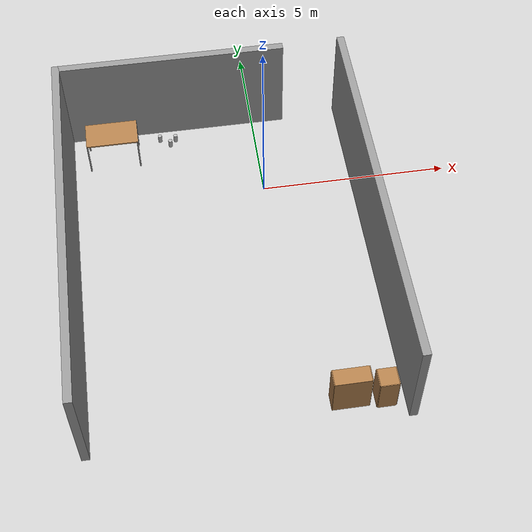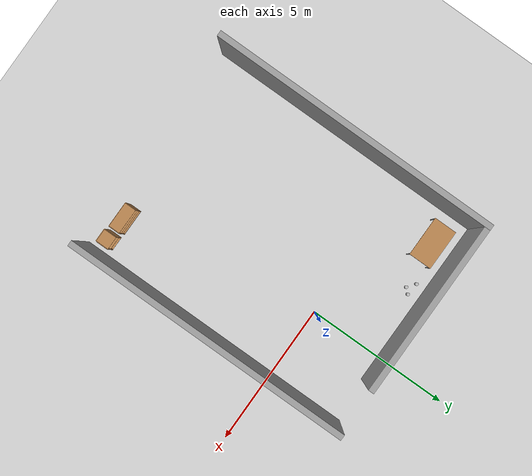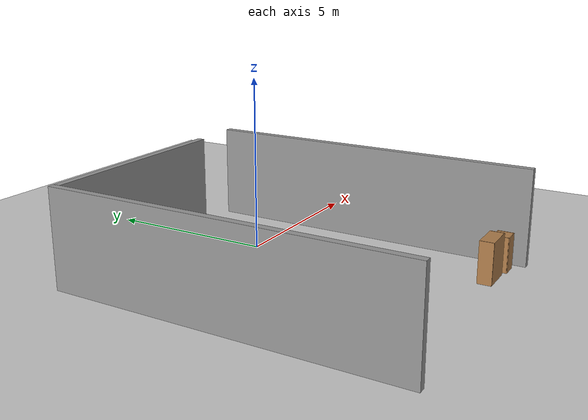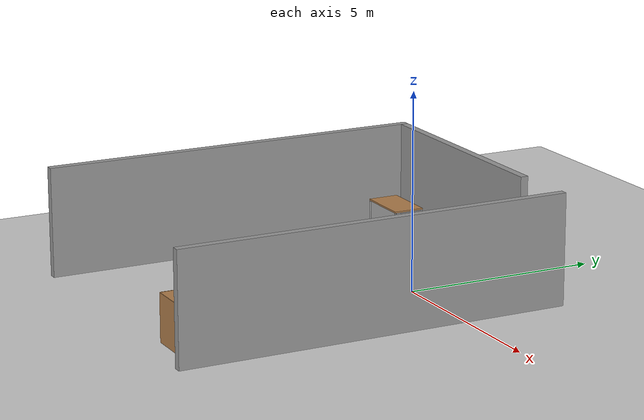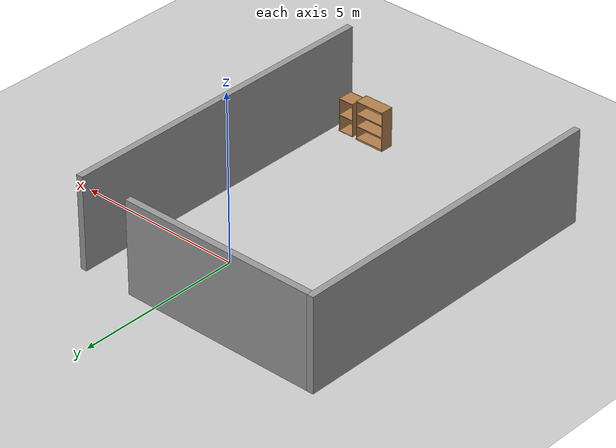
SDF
<sdf version="1.6">
 <world name="default">
  <model name="grey_wall_g_clone_long_0">
   <link name="link">
    <pose>0 0 1.4 0 -0 1.57</pose>
    <inertial>
     <mass>1</mass>
     <inertia><ixx>1</ixx><ixy>0</ixy><ixz>0</ixz><iyy>1</iyy><iyz>0</iyz><izz>1</izz></inertia>
    </inertial>
    <visual name="visual">
     <cast_shadows>0</cast_shadows>
     <geometry><box><size>10 0.2 2.8</size></box></geometry>
     <material>
      <script>
       <uri>model://grey_wall/materials/scripts</uri>
       <uri>model://grey_wall/materials/textures</uri>
       <name>Gazebo/Grey</name>
      </script>
      <ambient>1 1 1 1</ambient>
      <diffuse>1 1 1 1</diffuse>
      <specular>0 0 0 1</specular>
      <emissive>0 0 0 1</emissive>
      <shader type="vertex"><normal_map>__default__</normal_map></shader>
     </material>
    </visual>
    <collision name="collision">
     <geometry><box><size>10 0.2 2.8</size></box></geometry>
     <surface>
      <friction>
       <ode><mu>1</mu><mu2>1</mu2><fdir1>0 0 0</fdir1><slip1>0</slip1><slip2>0</slip2></ode>
       <torsional>
        <coefficient>1</coefficient>
        <patch_radius>0</patch_radius>
        <surface_radius>0</surface_radius>
        <use_patch_radius>1</use_patch_radius>
        <ode><slip>0</slip></ode>
       </torsional>
      </friction>
      <bounce><restitution_coefficient>0</restitution_coefficient><threshold>1e+06</threshold></bounce>
      <contact>
       <collide_without_contact>0</collide_without_contact>
       <collide_without_contact_bitmask>1</collide_without_contact_bitmask>
       <collide_bitmask>1</collide_bitmask>
       <ode>
        <soft_cfm>0</soft_cfm>
        <soft_erp>0.2</soft_erp>
        <kp>1e+13</kp>
        <kd>1</kd>
        <max_vel>0.01</max_vel>
        <min_depth>0</min_depth>
       </ode>
       <bullet>
        <split_impulse>1</split_impulse>
        <split_impulse_penetration_threshold>-0.01</split_impulse_penetration_threshold>
        <soft_cfm>0</soft_cfm>
        <soft_erp>0.2</soft_erp>
        <kp>1e+13</kp>
        <kd>1</kd>
       </bullet>
      </contact>
     </surface>
    </collision>
   </link>
   <static>1</static>
   <pose>-5.18704 -2.31083 0 0 -0 0</pose>
  </model>
  <model name="grey_wall_g_clone_long_0_clone">
   <link name="link">
    <pose>0 0 1.4 0 -0 1.57</pose>
    <inertial>
     <mass>1</mass>
     <inertia><ixx>1</ixx><ixy>0</ixy><ixz>0</ixz><iyy>1</iyy><iyz>0</iyz><izz>1</izz></inertia>
    </inertial>
    <visual name="visual">
     <cast_shadows>0</cast_shadows>
     <geometry><box><size>10 0.2 2.8</size></box></geometry>
     <material>
      <script>
       <uri>model://grey_wall/materials/scripts</uri>
       <uri>model://grey_wall/materials/textures</uri>
       <name>Gazebo/Grey</name>
      </script>
      <ambient>1 1 1 1</ambient>
      <diffuse>1 1 1 1</diffuse>
      <specular>0 0 0 1</specular>
      <emissive>0 0 0 1</emissive>
      <shader type="vertex"><normal_map>__default__</normal_map></shader>
     </material>
    </visual>
    <collision name="collision">
     <geometry><box><size>10 0.2 2.8</size></box></geometry>
     <surface>
      <friction>
       <ode><mu>1</mu><mu2>1</mu2><fdir1>0 0 0</fdir1><slip1>0</slip1><slip2>0</slip2></ode>
       <torsional>
        <coefficient>1</coefficient>
        <patch_radius>0</patch_radius>
        <surface_radius>0</surface_radius>
        <use_patch_radius>1</use_patch_radius>
        <ode><slip>0</slip></ode>
       </torsional>
      </friction>
      <bounce><restitution_coefficient>0</restitution_coefficient><threshold>1e+06</threshold></bounce>
      <contact>
       <collide_without_contact>0</collide_without_contact>
       <collide_without_contact_bitmask>1</collide_without_contact_bitmask>
       <collide_bitmask>1</collide_bitmask>
       <ode>
        <soft_cfm>0</soft_cfm>
        <soft_erp>0.2</soft_erp>
        <kp>1e+13</kp>
        <kd>1</kd>
        <max_vel>0.01</max_vel>
        <min_depth>0</min_depth>
       </ode>
       <bullet>
        <split_impulse>1</split_impulse>
        <split_impulse_penetration_threshold>-0.01</split_impulse_penetration_threshold>
        <soft_cfm>0</soft_cfm>
        <soft_erp>0.2</soft_erp>
        <kp>1e+13</kp>
        <kd>1</kd>
       </bullet>
      </contact>
     </surface>
    </collision>
   </link>
   <static>1</static>
   <pose>2.49127 -2.30902 0 0 -0 0</pose>
  </model>
  <model name="ground_plane">
   <static>1</static>
   <link name="link">
    <collision name="collision">
     <geometry><plane><normal>0 0 1</normal><size>100 100</size></plane></geometry>
     <surface><friction><ode><mu>100</mu><mu2>50</mu2></ode></friction></surface>
    </collision>
    <visual name="visual">
     <cast_shadows>0</cast_shadows>
     <geometry><plane><normal>0 0 1</normal><size>100 100</size></plane></geometry>
     <material>
      <script><uri>file://media/materials/scripts/gazebo.material</uri><name>Gazebo/Grey</name></script>
     </material>
    </visual>
   </link>
   <pose>-3.46411 -11.1785 0 0 -0 0</pose>
  </model>
  <model name="grey_wall_g_door_0">
   <link name="link">
    <pose>0 0 1.4 0 -0 0</pose>
    <inertial>
     <mass>1</mass>
     <inertia><ixx>1</ixx><ixy>0</ixy><ixz>0</ixz><iyy>1</iyy><iyz>0</iyz><izz>1</izz></inertia>
    </inertial>
    <visual name="visual">
     <cast_shadows>0</cast_shadows>
     <geometry><box><size>6 0.2 2.8</size></box></geometry>
     <material>
      <script>
       <uri>model://grey_wall/materials/scripts</uri>
       <uri>model://grey_wall/materials/textures</uri>
       <name>Gazebo/Grey</name>
      </script>
      <ambient>1 1 1 1</ambient>
      <diffuse>1 1 1 1</diffuse>
      <specular>0 0 0 1</specular>
      <emissive>0 0 0 1</emissive>
      <shader type="vertex"><normal_map>__default__</normal_map></shader>
     </material>
    </visual>
    <collision name="collision">
     <geometry><box><size>6 0.2 2.8</size></box></geometry>
     <surface>
      <friction>
       <ode><mu>1</mu><mu2>1</mu2><fdir1>0 0 0</fdir1><slip1>0</slip1><slip2>0</slip2></ode>
       <torsional>
        <coefficient>1</coefficient>
        <patch_radius>0</patch_radius>
        <surface_radius>0</surface_radius>
        <use_patch_radius>1</use_patch_radius>
        <ode><slip>0</slip></ode>
       </torsional>
      </friction>
      <bounce><restitution_coefficient>0</restitution_coefficient><threshold>1e+06</threshold></bounce>
      <contact>
       <collide_without_contact>0</collide_without_contact>
       <collide_without_contact_bitmask>1</collide_without_contact_bitmask>
       <collide_bitmask>1</collide_bitmask>
       <ode>
        <soft_cfm>0</soft_cfm>
        <soft_erp>0.2</soft_erp>
        <kp>1e+13</kp>
        <kd>1</kd>
        <max_vel>0.01</max_vel>
        <min_depth>0</min_depth>
       </ode>
       <bullet>
        <split_impulse>1</split_impulse>
        <split_impulse_penetration_threshold>-0.01</split_impulse_penetration_threshold>
        <soft_cfm>0</soft_cfm>
        <soft_erp>0.2</soft_erp>
        <kp>1e+13</kp>
        <kd>1</kd>
       </bullet>
      </contact>
     </surface>
    </collision>
   </link>
   <static>1</static>
   <pose>-2.10611 2.58816 0 0 -0 0</pose>
  </model>
  <model name="table">
   <static>0</static>
   <link name="link">
    <collision name="surface">
     <pose>0 0 1 0 -0 0</pose>
     <geometry><box><size>1.5 0.8 0.03</size></box></geometry>
     <surface><friction><ode><mu>0.6</mu><mu2>0.6</mu2></ode></friction></surface>
    </collision>
    <visual name="visual1">
     <pose>0 0 1 0 -0 0</pose>
     <geometry><box><size>1.4 0.8 0.04</size></box></geometry>
     <material>
      <script><uri>file://media/materials/scripts/gazebo.material</uri><name>Gazebo/Wood</name></script>
     </material>
    </visual>
    <collision name="front_left_leg">
     <pose>0.68 0.38 0.5 0 -0 0</pose>
     <geometry><cylinder><radius>0.02</radius><length>1</length></cylinder></geometry>
    </collision>
    <visual name="front_left_leg">
     <pose>0.68 0.38 0.5 0 -0 0</pose>
     <geometry><cylinder><radius>0.02</radius><length>1</length></cylinder></geometry>
     <material>
      <script><uri>file://media/materials/scripts/gazebo.material</uri><name>Gazebo/Grey</name></script>
     </material>
    </visual>
    <collision name="front_right_leg">
     <pose>0.68 -0.38 0.5 0 -0 0</pose>
     <geometry><cylinder><radius>0.02</radius><length>1</length></cylinder></geometry>
    </collision>
    <visual name="front_right_leg">
     <pose>0.68 -0.38 0.5 0 -0 0</pose>
     <geometry><cylinder><radius>0.02</radius><length>1</length></cylinder></geometry>
     <material>
      <script><uri>file://media/materials/scripts/gazebo.material</uri><name>Gazebo/Grey</name></script>
     </material>
    </visual>
    <collision name="back_right_leg">
     <pose>-0.68 -0.38 0.5 0 -0 0</pose>
     <geometry><cylinder><radius>0.02</radius><length>1</length></cylinder></geometry>
    </collision>
    <visual name="back_right_leg">
     <pose>-0.68 -0.38 0.5 0 -0 0</pose>
     <geometry><cylinder><radius>0.02</radius><length>1</length></cylinder></geometry>
     <material>
      <script><uri>file://media/materials/scripts/gazebo.material</uri><name>Gazebo/Grey</name></script>
     </material>
    </visual>
    <collision name="back_left_leg">
     <pose>-0.68 0.38 0.5 0 -0 0</pose>
     <geometry><cylinder><radius>0.02</radius><length>1</length></cylinder></geometry>
    </collision>
    <visual name="back_left_leg">
     <pose>-0.68 0.38 0.5 0 -0 0</pose>
     <geometry><cylinder><radius>0.02</radius><length>1</length></cylinder></geometry>
     <material>
      <script><uri>file://media/materials/scripts/gazebo.material</uri><name>Gazebo/Grey</name></script>
     </material>
    </visual>
    <inertial>
     <inertia><ixx>1</ixx><ixy>0</ixy><ixz>0</ixz><iyy>1</iyy><iyz>0</iyz><izz>1</izz></inertia>
     <mass>1</mass>
    </inertial>
   </link>
   <pose>-3.95655 1.72119 -9e-06 -1e-06 0 0</pose>
  </model>
  <model name="beer">
   <link name="link">
    <pose>0 0 0.115 0 -0 0</pose>
    <inertial>
     <mass>0.39</mass>
     <inertia><ixx>0.00058</ixx><ixy>0</ixy><ixz>0</ixz><iyy>0.00058</iyy><iyz>0</iyz><izz>0.00019</izz></inertia>
    </inertial>
    <collision name="collision">
     <geometry><cylinder><radius>0.055</radius><length>0.23</length></cylinder></geometry>
    </collision>
    <visual name="visual">
     <geometry><cylinder><radius>0.055</radius><length>0.23</length></cylinder></geometry>
     <material>
      <script>
       <uri>model://beer/materials/scripts</uri>
       <uri>model://beer/materials/textures</uri>
       <name>Beer/Diffuse</name>
      </script>
     </material>
    </visual>
   </link>
   <pose>-2.65815 2.15702 -7e-06 -1e-06 -0 -3.1e-05</pose>
  </model>
  <model name="beer_0">
   <link name="link">
    <pose>0 0 0.115 0 -0 0</pose>
    <inertial>
     <mass>0.39</mass>
     <inertia><ixx>0.00058</ixx><ixy>0</ixy><ixz>0</ixz><iyy>0.00058</iyy><iyz>0</iyz><izz>0.00019</izz></inertia>
    </inertial>
    <collision name="collision">
     <geometry><cylinder><radius>0.055</radius><length>0.23</length></cylinder></geometry>
    </collision>
    <visual name="visual">
     <geometry><cylinder><radius>0.055</radius><length>0.23</length></cylinder></geometry>
     <material>
      <script>
       <uri>model://beer/materials/scripts</uri>
       <uri>model://beer/materials/textures</uri>
       <name>Beer/Diffuse</name>
      </script>
     </material>
    </visual>
   </link>
   <pose>-2.38207 1.94053 0.000726 -0.007255 0.011169 2.8239</pose>
  </model>
  <model name="beer_1">
   <link name="link">
    <pose>0 0 0.115 0 -0 0</pose>
    <inertial>
     <mass>0.39</mass>
     <inertia><ixx>0.00058</ixx><ixy>0</ixy><ixz>0</ixz><iyy>0.00058</iyy><iyz>0</iyz><izz>0.00019</izz></inertia>
    </inertial>
    <collision name="collision">
     <geometry><cylinder><radius>0.055</radius><length>0.23</length></cylinder></geometry>
    </collision>
    <visual name="visual">
     <geometry><cylinder><radius>0.055</radius><length>0.23</length></cylinder></geometry>
     <material>
      <script>
       <uri>model://beer/materials/scripts</uri>
       <uri>model://beer/materials/textures</uri>
       <name>Beer/Diffuse</name>
      </script>
     </material>
    </visual>
   </link>
   <pose>-2.22459 2.1163 2.4e-05 0.000407 0.00019 2.25111</pose>
  </model>
  <model name="bookshelf_0">
   <link name="link">
    <pose>0 0 0 0 -0 3.14</pose>
    <inertial>
     <mass>1</mass>
     <inertia><ixx>1</ixx><ixy>0</ixy><ixz>0</ixz><iyy>1</iyy><iyz>0</iyz><izz>1</izz></inertia>
    </inertial>
    <visual name="visual1">
     <pose>0 0.005 0.6 0 -0 0</pose>
     <geometry><box><size>0.9 0.01 1.2</size></box></geometry>
     <material>
      <script><uri>file://media/materials/scripts/gazebo.material</uri><name>Gazebo/Wood</name></script>
      <ambient>1 1 1 1</ambient>
      <diffuse>1 1 1 1</diffuse>
      <specular>0.2 0.2 0.2 1</specular>
      <emissive>0 0 0 1</emissive>
      <shader type="vertex"><normal_map>__default__</normal_map></shader>
     </material>
    </visual>
    <visual name="visual2">
     <pose>0.45 -0.195 0.6 0 -0 0</pose>
     <geometry><box><size>0.02 0.4 1.2</size></box></geometry>
     <material>
      <script><uri>file://media/materials/scripts/gazebo.material</uri><name>Gazebo/Wood</name></script>
      <ambient>1 1 1 1</ambient>
      <diffuse>1 1 1 1</diffuse>
      <specular>0.2 0.2 0.2 1</specular>
      <emissive>0 0 0 1</emissive>
      <shader type="vertex"><normal_map>__default__</normal_map></shader>
     </material>
    </visual>
    <visual name="visual3">
     <pose>-0.45 -0.195 0.6 0 -0 0</pose>
     <geometry><box><size>0.02 0.4 1.2</size></box></geometry>
     <material>
      <script><uri>file://media/materials/scripts/gazebo.material</uri><name>Gazebo/Wood</name></script>
      <ambient>1 1 1 1</ambient>
      <diffuse>1 1 1 1</diffuse>
      <specular>0.2 0.2 0.2 1</specular>
      <emissive>0 0 0 1</emissive>
      <shader type="vertex"><normal_map>__default__</normal_map></shader>
     </material>
    </visual>
    <visual name="visual4">
     <pose>0 -0.195 0.03 0 -0 0</pose>
     <geometry><box><size>0.88 0.4 0.06</size></box></geometry>
     <material>
      <script><uri>file://media/materials/scripts/gazebo.material</uri><name>Gazebo/Wood</name></script>
      <ambient>1 1 1 1</ambient>
      <diffuse>1 1 1 1</diffuse>
      <specular>0.2 0.2 0.2 1</specular>
      <emissive>0 0 0 1</emissive>
      <shader type="vertex"><normal_map>__default__</normal_map></shader>
     </material>
    </visual>
    <visual name="visual5">
     <pose>0 -0.195 1.19 0 -0 0</pose>
     <geometry><box><size>0.88 0.4 0.02</size></box></geometry>
     <material>
      <script><uri>file://media/materials/scripts/gazebo.material</uri><name>Gazebo/Wood</name></script>
      <ambient>1 1 1 1</ambient>
      <diffuse>1 1 1 1</diffuse>
      <specular>0.2 0.2 0.2 1</specular>
      <emissive>0 0 0 1</emissive>
      <shader type="vertex"><normal_map>__default__</normal_map></shader>
     </material>
    </visual>
    <visual name="visual6">
     <pose>0 -0.195 0.43 0 -0 0</pose>
     <geometry><box><size>0.88 0.4 0.02</size></box></geometry>
     <material>
      <script><uri>file://media/materials/scripts/gazebo.material</uri><name>Gazebo/Wood</name></script>
      <ambient>1 1 1 1</ambient>
      <diffuse>1 1 1 1</diffuse>
      <specular>0.2 0.2 0.2 1</specular>
      <emissive>0 0 0 1</emissive>
      <shader type="vertex"><normal_map>__default__</normal_map></shader>
     </material>
    </visual>
    <visual name="visual7">
     <pose>0 -0.195 0.8 0 -0 0</pose>
     <geometry><box><size>0.88 0.4 0.02</size></box></geometry>
     <material>
      <script><uri>file://media/materials/scripts/gazebo.material</uri><name>Gazebo/Wood</name></script>
      <ambient>1 1 1 1</ambient>
      <diffuse>1 1 1 1</diffuse>
      <specular>0.2 0.2 0.2 1</specular>
      <emissive>0 0 0 1</emissive>
      <shader type="vertex"><normal_map>__default__</normal_map></shader>
     </material>
    </visual>
    <collision name="left_side">
     <pose>0.45 -0.195 0.6 0 -0 0</pose>
     <geometry><box><size>0.02 0.4 1.2</size></box></geometry>
     <surface>
      <friction>
       <ode><mu>1</mu><mu2>1</mu2><fdir1>0 0 0</fdir1><slip1>0</slip1><slip2>0</slip2></ode>
       <torsional>
        <coefficient>1</coefficient>
        <patch_radius>0</patch_radius>
        <surface_radius>0</surface_radius>
        <use_patch_radius>1</use_patch_radius>
        <ode><slip>0</slip></ode>
       </torsional>
      </friction>
      <bounce><restitution_coefficient>0</restitution_coefficient><threshold>1e+06</threshold></bounce>
      <contact>
       <collide_without_contact>0</collide_without_contact>
       <collide_without_contact_bitmask>1</collide_without_contact_bitmask>
       <collide_bitmask>1</collide_bitmask>
       <ode>
        <soft_cfm>0</soft_cfm>
        <soft_erp>0.2</soft_erp>
        <kp>1e+13</kp>
        <kd>1</kd>
        <max_vel>0.01</max_vel>
        <min_depth>0</min_depth>
       </ode>
       <bullet>
        <split_impulse>1</split_impulse>
        <split_impulse_penetration_threshold>-0.01</split_impulse_penetration_threshold>
        <soft_cfm>0</soft_cfm>
        <soft_erp>0.2</soft_erp>
        <kp>1e+13</kp>
        <kd>1</kd>
       </bullet>
      </contact>
     </surface>
    </collision>
    <collision name="back">
     <pose>0 0.005 0.6 0 -0 0</pose>
     <geometry><box><size>0.9 0.01 1.2</size></box></geometry>
     <surface>
      <friction>
       <ode><mu>1</mu><mu2>1</mu2><fdir1>0 0 0</fdir1><slip1>0</slip1><slip2>0</slip2></ode>
       <torsional>
        <coefficient>1</coefficient>
        <patch_radius>0</patch_radius>
        <surface_radius>0</surface_radius>
        <use_patch_radius>1</use_patch_radius>
        <ode><slip>0</slip></ode>
       </torsional>
      </friction>
      <bounce><restitution_coefficient>0</restitution_coefficient><threshold>1e+06</threshold></bounce>
      <contact>
       <collide_without_contact>0</collide_without_contact>
       <collide_without_contact_bitmask>1</collide_without_contact_bitmask>
       <collide_bitmask>1</collide_bitmask>
       <ode>
        <soft_cfm>0</soft_cfm>
        <soft_erp>0.2</soft_erp>
        <kp>1e+13</kp>
        <kd>1</kd>
        <max_vel>0.01</max_vel>
        <min_depth>0</min_depth>
       </ode>
       <bullet>
        <split_impulse>1</split_impulse>
        <split_impulse_penetration_threshold>-0.01</split_impulse_penetration_threshold>
        <soft_cfm>0</soft_cfm>
        <soft_erp>0.2</soft_erp>
        <kp>1e+13</kp>
        <kd>1</kd>
       </bullet>
      </contact>
     </surface>
    </collision>
    <collision name="low_shelf">
     <pose>0 -0.195 0.43 0 -0 0</pose>
     <geometry><box><size>0.88 0.4 0.02</size></box></geometry>
     <surface>
      <friction>
       <ode><mu>1</mu><mu2>1</mu2><fdir1>0 0 0</fdir1><slip1>0</slip1><slip2>0</slip2></ode>
       <torsional>
        <coefficient>1</coefficient>
        <patch_radius>0</patch_radius>
        <surface_radius>0</surface_radius>
        <use_patch_radius>1</use_patch_radius>
        <ode><slip>0</slip></ode>
       </torsional>
      </friction>
      <bounce><restitution_coefficient>0</restitution_coefficient><threshold>1e+06</threshold></bounce>
      <contact>
       <collide_without_contact>0</collide_without_contact>
       <collide_without_contact_bitmask>1</collide_without_contact_bitmask>
       <collide_bitmask>1</collide_bitmask>
       <ode>
        <soft_cfm>0</soft_cfm>
        <soft_erp>0.2</soft_erp>
        <kp>1e+13</kp>
        <kd>1</kd>
        <max_vel>0.01</max_vel>
        <min_depth>0</min_depth>
       </ode>
       <bullet>
        <split_impulse>1</split_impulse>
        <split_impulse_penetration_threshold>-0.01</split_impulse_penetration_threshold>
        <soft_cfm>0</soft_cfm>
        <soft_erp>0.2</soft_erp>
        <kp>1e+13</kp>
        <kd>1</kd>
       </bullet>
      </contact>
     </surface>
    </collision>
    <collision name="right_side">
     <pose>-0.45 -0.195 0.6 0 -0 0</pose>
     <geometry><box><size>0.02 0.4 1.2</size></box></geometry>
     <surface>
      <friction>
       <ode><mu>1</mu><mu2>1</mu2><fdir1>0 0 0</fdir1><slip1>0</slip1><slip2>0</slip2></ode>
       <torsional>
        <coefficient>1</coefficient>
        <patch_radius>0</patch_radius>
        <surface_radius>0</surface_radius>
        <use_patch_radius>1</use_patch_radius>
        <ode><slip>0</slip></ode>
       </torsional>
      </friction>
      <bounce><restitution_coefficient>0</restitution_coefficient><threshold>1e+06</threshold></bounce>
      <contact>
       <collide_without_contact>0</collide_without_contact>
       <collide_without_contact_bitmask>1</collide_without_contact_bitmask>
       <collide_bitmask>1</collide_bitmask>
       <ode>
        <soft_cfm>0</soft_cfm>
        <soft_erp>0.2</soft_erp>
        <kp>1e+13</kp>
        <kd>1</kd>
        <max_vel>0.01</max_vel>
        <min_depth>0</min_depth>
       </ode>
       <bullet>
        <split_impulse>1</split_impulse>
        <split_impulse_penetration_threshold>-0.01</split_impulse_penetration_threshold>
        <soft_cfm>0</soft_cfm>
        <soft_erp>0.2</soft_erp>
        <kp>1e+13</kp>
        <kd>1</kd>
       </bullet>
      </contact>
     </surface>
    </collision>
    <collision name="bottom">
     <pose>0 -0.195 0.03 0 -0 0</pose>
     <geometry><box><size>0.88 0.4 0.06</size></box></geometry>
     <surface>
      <friction>
       <ode><mu>1</mu><mu2>1</mu2><fdir1>0 0 0</fdir1><slip1>0</slip1><slip2>0</slip2></ode>
       <torsional>
        <coefficient>1</coefficient>
        <patch_radius>0</patch_radius>
        <surface_radius>0</surface_radius>
        <use_patch_radius>1</use_patch_radius>
        <ode><slip>0</slip></ode>
       </torsional>
      </friction>
      <bounce><restitution_coefficient>0</restitution_coefficient><threshold>1e+06</threshold></bounce>
      <contact>
       <collide_without_contact>0</collide_without_contact>
       <collide_without_contact_bitmask>1</collide_without_contact_bitmask>
       <collide_bitmask>1</collide_bitmask>
       <ode>
        <soft_cfm>0</soft_cfm>
        <soft_erp>0.2</soft_erp>
        <kp>1e+13</kp>
        <kd>1</kd>
        <max_vel>0.01</max_vel>
        <min_depth>0</min_depth>
       </ode>
       <bullet>
        <split_impulse>1</split_impulse>
        <split_impulse_penetration_threshold>-0.01</split_impulse_penetration_threshold>
        <soft_cfm>0</soft_cfm>
        <soft_erp>0.2</soft_erp>
        <kp>1e+13</kp>
        <kd>1</kd>
       </bullet>
      </contact>
     </surface>
    </collision>
    <collision name="top">
     <pose>0 -0.195 1.19 0 -0 0</pose>
     <geometry><box><size>0.88 0.4 0.02</size></box></geometry>
     <surface>
      <friction>
       <ode><mu>1</mu><mu2>1</mu2><fdir1>0 0 0</fdir1><slip1>0</slip1><slip2>0</slip2></ode>
       <torsional>
        <coefficient>1</coefficient>
        <patch_radius>0</patch_radius>
        <surface_radius>0</surface_radius>
        <use_patch_radius>1</use_patch_radius>
        <ode><slip>0</slip></ode>
       </torsional>
      </friction>
      <bounce><restitution_coefficient>0</restitution_coefficient><threshold>1e+06</threshold></bounce>
      <contact>
       <collide_without_contact>0</collide_without_contact>
       <collide_without_contact_bitmask>1</collide_without_contact_bitmask>
       <collide_bitmask>1</collide_bitmask>
       <ode>
        <soft_cfm>0</soft_cfm>
        <soft_erp>0.2</soft_erp>
        <kp>1e+13</kp>
        <kd>1</kd>
        <max_vel>0.01</max_vel>
        <min_depth>0</min_depth>
       </ode>
       <bullet>
        <split_impulse>1</split_impulse>
        <split_impulse_penetration_threshold>-0.01</split_impulse_penetration_threshold>
        <soft_cfm>0</soft_cfm>
        <soft_erp>0.2</soft_erp>
        <kp>1e+13</kp>
        <kd>1</kd>
       </bullet>
      </contact>
     </surface>
    </collision>
    <collision name="high_shelf">
     <pose>0 -0.195 0.8 0 -0 0</pose>
     <geometry><box><size>0.88 0.4 0.02</size></box></geometry>
     <surface>
      <friction>
       <ode><mu>1</mu><mu2>1</mu2><fdir1>0 0 0</fdir1><slip1>0</slip1><slip2>0</slip2></ode>
       <torsional>
        <coefficient>1</coefficient>
        <patch_radius>0</patch_radius>
        <surface_radius>0</surface_radius>
        <use_patch_radius>1</use_patch_radius>
        <ode><slip>0</slip></ode>
       </torsional>
      </friction>
      <bounce><restitution_coefficient>0</restitution_coefficient><threshold>1e+06</threshold></bounce>
      <contact>
       <collide_without_contact>0</collide_without_contact>
       <collide_without_contact_bitmask>1</collide_without_contact_bitmask>
       <collide_bitmask>1</collide_bitmask>
       <ode>
        <soft_cfm>0</soft_cfm>
        <soft_erp>0.2</soft_erp>
        <kp>1e+13</kp>
        <kd>1</kd>
        <max_vel>0.01</max_vel>
        <min_depth>0</min_depth>
       </ode>
       <bullet>
        <split_impulse>1</split_impulse>
        <split_impulse_penetration_threshold>-0.01</split_impulse_penetration_threshold>
        <soft_cfm>0</soft_cfm>
        <soft_erp>0.2</soft_erp>
        <kp>1e+13</kp>
        <kd>1</kd>
       </bullet>
      </contact>
     </surface>
    </collision>
   </link>
   <static>1</static>
   <pose>1.06716 -6.89402 0 0 -0 0</pose>
  </model>
  <model name="cabinet_0_0">
   <link name="cabinet_bottom_plate">
    <pose>0 0 0 0 0 -1.57</pose>
    <inertial>
     <pose>0 0 -1 0 -0 0</pose>
     <inertia><ixx>2.05</ixx><ixy>0</ixy><ixz>0</ixz><iyy>2.05</iyy><iyz>0</iyz><izz>2.05</izz></inertia>
     <mass>25</mass>
    </inertial>
    <visual name="cabinet_bottom_plate_geom_visual">
     <pose>0 0 0.01 0 -0 0</pose>
     <geometry><box><size>0.45 0.45 0.02</size></box></geometry>
     <material>
      <script><uri>file://media/materials/scripts/gazebo.material</uri><name>Gazebo/Wood</name></script>
      <ambient>1 1 1 1</ambient>
      <diffuse>1 1 1 1</diffuse>
      <specular>0.2 0.2 0.2 1</specular>
      <emissive>0 0 0 1</emissive>
      <shader type="vertex"><normal_map>__default__</normal_map></shader>
     </material>
    </visual>
    <visual name="cabinet_bottom_plate_geom_cabinet_back_plate_visual">
     <pose>0.235 0 0.51 0 -0 0</pose>
     <geometry><box><size>0.02 0.45 1.02</size></box></geometry>
     <material>
      <script><uri>file://media/materials/scripts/gazebo.material</uri><name>Gazebo/Wood</name></script>
      <ambient>1 1 1 1</ambient>
      <diffuse>1 1 1 1</diffuse>
      <specular>0.2 0.2 0.2 1</specular>
      <emissive>0 0 0 1</emissive>
      <shader type="vertex"><normal_map>__default__</normal_map></shader>
     </material>
    </visual>
    <visual name="cabinet_bottom_plate_geom_cabinet_left_plate_visual">
     <pose>0 0.235 0.51 0 -0 0</pose>
     <geometry><box><size>0.45 0.02 1.02</size></box></geometry>
     <material>
      <script><uri>file://media/materials/scripts/gazebo.material</uri><name>Gazebo/Wood</name></script>
      <ambient>1 1 1 1</ambient>
      <diffuse>1 1 1 1</diffuse>
      <specular>0.2 0.2 0.2 1</specular>
      <emissive>0 0 0 1</emissive>
      <shader type="vertex"><normal_map>__default__</normal_map></shader>
     </material>
    </visual>
    <visual name="cabinet_bottom_plate_geom_cabinet_middle_plate_visual">
     <pose>0 0 0.51 0 -0 0</pose>
     <geometry><box><size>0.45 0.45 0.02</size></box></geometry>
     <material>
      <script><uri>file://media/materials/scripts/gazebo.material</uri><name>Gazebo/Wood</name></script>
      <ambient>1 1 1 1</ambient>
      <diffuse>1 1 1 1</diffuse>
      <specular>0.2 0.2 0.2 1</specular>
      <emissive>0 0 0 1</emissive>
      <shader type="vertex"><normal_map>__default__</normal_map></shader>
     </material>
    </visual>
    <visual name="cabinet_bottom_plate_geom_cabinet_right_plate_visual">
     <pose>0 -0.235 0.51 0 -0 0</pose>
     <geometry><box><size>0.45 0.02 1.02</size></box></geometry>
     <material>
      <script><uri>file://media/materials/scripts/gazebo.material</uri><name>Gazebo/Wood</name></script>
      <ambient>1 1 1 1</ambient>
      <diffuse>1 1 1 1</diffuse>
      <specular>0.2 0.2 0.2 1</specular>
      <emissive>0 0 0 1</emissive>
      <shader type="vertex"><normal_map>__default__</normal_map></shader>
     </material>
    </visual>
    <visual name="cabinet_bottom_plate_geom_cabinet_top_plate_visual">
     <pose>0 0 1.01 0 -0 0</pose>
     <geometry><box><size>0.45 0.45 0.02</size></box></geometry>
     <material>
      <script><uri>file://media/materials/scripts/gazebo.material</uri><name>Gazebo/Wood</name></script>
      <ambient>1 1 1 1</ambient>
      <diffuse>1 1 1 1</diffuse>
      <specular>0.2 0.2 0.2 1</specular>
      <emissive>0 0 0 1</emissive>
      <shader type="vertex"><normal_map>__default__</normal_map></shader>
     </material>
    </visual>
    <collision name="cabinet_bottom_plate_geom_cabinet_back_plate">
     <pose>0.235 0 0.51 0 -0 0</pose>
     <geometry><box><size>0.02 0.45 1.02</size></box></geometry>
     <surface>
      <friction>
       <ode><mu>1</mu><mu2>1</mu2><fdir1>0 0 0</fdir1><slip1>0</slip1><slip2>0</slip2></ode>
       <torsional>
        <coefficient>1</coefficient>
        <patch_radius>0</patch_radius>
        <surface_radius>0</surface_radius>
        <use_patch_radius>1</use_patch_radius>
        <ode><slip>0</slip></ode>
       </torsional>
      </friction>
      <bounce><restitution_coefficient>0</restitution_coefficient><threshold>1e+06</threshold></bounce>
      <contact>
       <collide_without_contact>0</collide_without_contact>
       <collide_without_contact_bitmask>1</collide_without_contact_bitmask>
       <collide_bitmask>1</collide_bitmask>
       <ode>
        <soft_cfm>0</soft_cfm>
        <soft_erp>0.2</soft_erp>
        <kp>1e+13</kp>
        <kd>1</kd>
        <max_vel>0.01</max_vel>
        <min_depth>0</min_depth>
       </ode>
       <bullet>
        <split_impulse>1</split_impulse>
        <split_impulse_penetration_threshold>-0.01</split_impulse_penetration_threshold>
        <soft_cfm>0</soft_cfm>
        <soft_erp>0.2</soft_erp>
        <kp>1e+13</kp>
        <kd>1</kd>
       </bullet>
      </contact>
     </surface>
    </collision>
    <collision name="cabinet_bottom_plate_geom_cabinet_middle_plate">
     <pose>0 0 0.51 0 -0 0</pose>
     <geometry><box><size>0.45 0.45 0.02</size></box></geometry>
     <surface>
      <friction>
       <ode><mu>1</mu><mu2>1</mu2><fdir1>0 0 0</fdir1><slip1>0</slip1><slip2>0</slip2></ode>
       <torsional>
        <coefficient>1</coefficient>
        <patch_radius>0</patch_radius>
        <surface_radius>0</surface_radius>
        <use_patch_radius>1</use_patch_radius>
        <ode><slip>0</slip></ode>
       </torsional>
      </friction>
      <bounce><restitution_coefficient>0</restitution_coefficient><threshold>1e+06</threshold></bounce>
      <contact>
       <collide_without_contact>0</collide_without_contact>
       <collide_without_contact_bitmask>1</collide_without_contact_bitmask>
       <collide_bitmask>1</collide_bitmask>
       <ode>
        <soft_cfm>0</soft_cfm>
        <soft_erp>0.2</soft_erp>
        <kp>1e+13</kp>
        <kd>1</kd>
        <max_vel>0.01</max_vel>
        <min_depth>0</min_depth>
       </ode>
       <bullet>
        <split_impulse>1</split_impulse>
        <split_impulse_penetration_threshold>-0.01</split_impulse_penetration_threshold>
        <soft_cfm>0</soft_cfm>
        <soft_erp>0.2</soft_erp>
        <kp>1e+13</kp>
        <kd>1</kd>
       </bullet>
      </contact>
     </surface>
    </collision>
    <collision name="cabinet_bottom_plate_geom">
     <pose>0 0 0.01 0 -0 0</pose>
     <geometry><box><size>0.45 0.45 0.02</size></box></geometry>
     <surface>
      <friction>
       <ode><mu>1</mu><mu2>1</mu2><fdir1>0 0 0</fdir1><slip1>0</slip1><slip2>0</slip2></ode>
       <torsional>
        <coefficient>1</coefficient>
        <patch_radius>0</patch_radius>
        <surface_radius>0</surface_radius>
        <use_patch_radius>1</use_patch_radius>
        <ode><slip>0</slip></ode>
       </torsional>
      </friction>
      <bounce><restitution_coefficient>0</restitution_coefficient><threshold>1e+06</threshold></bounce>
      <contact>
       <collide_without_contact>0</collide_without_contact>
       <collide_without_contact_bitmask>1</collide_without_contact_bitmask>
       <collide_bitmask>1</collide_bitmask>
       <ode>
        <soft_cfm>0</soft_cfm>
        <soft_erp>0.2</soft_erp>
        <kp>1e+13</kp>
        <kd>1</kd>
        <max_vel>0.01</max_vel>
        <min_depth>0</min_depth>
       </ode>
       <bullet>
        <split_impulse>1</split_impulse>
        <split_impulse_penetration_threshold>-0.01</split_impulse_penetration_threshold>
        <soft_cfm>0</soft_cfm>
        <soft_erp>0.2</soft_erp>
        <kp>1e+13</kp>
        <kd>1</kd>
       </bullet>
      </contact>
     </surface>
    </collision>
    <collision name="cabinet_bottom_plate_geom_cabinet_left_plate">
     <pose>0 0.235 0.51 0 -0 0</pose>
     <geometry><box><size>0.45 0.02 1.02</size></box></geometry>
     <surface>
      <friction>
       <ode><mu>1</mu><mu2>1</mu2><fdir1>0 0 0</fdir1><slip1>0</slip1><slip2>0</slip2></ode>
       <torsional>
        <coefficient>1</coefficient>
        <patch_radius>0</patch_radius>
        <surface_radius>0</surface_radius>
        <use_patch_radius>1</use_patch_radius>
        <ode><slip>0</slip></ode>
       </torsional>
      </friction>
      <bounce><restitution_coefficient>0</restitution_coefficient><threshold>1e+06</threshold></bounce>
      <contact>
       <collide_without_contact>0</collide_without_contact>
       <collide_without_contact_bitmask>1</collide_without_contact_bitmask>
       <collide_bitmask>1</collide_bitmask>
       <ode>
        <soft_cfm>0</soft_cfm>
        <soft_erp>0.2</soft_erp>
        <kp>1e+13</kp>
        <kd>1</kd>
        <max_vel>0.01</max_vel>
        <min_depth>0</min_depth>
       </ode>
       <bullet>
        <split_impulse>1</split_impulse>
        <split_impulse_penetration_threshold>-0.01</split_impulse_penetration_threshold>
        <soft_cfm>0</soft_cfm>
        <soft_erp>0.2</soft_erp>
        <kp>1e+13</kp>
        <kd>1</kd>
       </bullet>
      </contact>
     </surface>
    </collision>
    <collision name="cabinet_bottom_plate_geom_cabinet_right_plate">
     <pose>0 -0.235 0.51 0 -0 0</pose>
     <geometry><box><size>0.45 0.02 1.02</size></box></geometry>
     <surface>
      <friction>
       <ode><mu>1</mu><mu2>1</mu2><fdir1>0 0 0</fdir1><slip1>0</slip1><slip2>0</slip2></ode>
       <torsional>
        <coefficient>1</coefficient>
        <patch_radius>0</patch_radius>
        <surface_radius>0</surface_radius>
        <use_patch_radius>1</use_patch_radius>
        <ode><slip>0</slip></ode>
       </torsional>
      </friction>
      <bounce><restitution_coefficient>0</restitution_coefficient><threshold>1e+06</threshold></bounce>
      <contact>
       <collide_without_contact>0</collide_without_contact>
       <collide_without_contact_bitmask>1</collide_without_contact_bitmask>
       <collide_bitmask>1</collide_bitmask>
       <ode>
        <soft_cfm>0</soft_cfm>
        <soft_erp>0.2</soft_erp>
        <kp>1e+13</kp>
        <kd>1</kd>
        <max_vel>0.01</max_vel>
        <min_depth>0</min_depth>
       </ode>
       <bullet>
        <split_impulse>1</split_impulse>
        <split_impulse_penetration_threshold>-0.01</split_impulse_penetration_threshold>
        <soft_cfm>0</soft_cfm>
        <soft_erp>0.2</soft_erp>
        <kp>1e+13</kp>
        <kd>1</kd>
       </bullet>
      </contact>
     </surface>
    </collision>
    <collision name="cabinet_bottom_plate_geom_cabinet_top_plate">
     <pose>0 0 1.01 0 -0 0</pose>
     <geometry><box><size>0.45 0.45 0.02</size></box></geometry>
     <surface>
      <friction>
       <ode><mu>1</mu><mu2>1</mu2><fdir1>0 0 0</fdir1><slip1>0</slip1><slip2>0</slip2></ode>
       <torsional>
        <coefficient>1</coefficient>
        <patch_radius>0</patch_radius>
        <surface_radius>0</surface_radius>
        <use_patch_radius>1</use_patch_radius>
        <ode><slip>0</slip></ode>
       </torsional>
      </friction>
      <bounce><restitution_coefficient>0</restitution_coefficient><threshold>1e+06</threshold></bounce>
      <contact>
       <collide_without_contact>0</collide_without_contact>
       <collide_without_contact_bitmask>1</collide_without_contact_bitmask>
       <collide_bitmask>1</collide_bitmask>
       <ode>
        <soft_cfm>0</soft_cfm>
        <soft_erp>0.2</soft_erp>
        <kp>1e+13</kp>
        <kd>1</kd>
        <max_vel>0.01</max_vel>
        <min_depth>0</min_depth>
       </ode>
       <bullet>
        <split_impulse>1</split_impulse>
        <split_impulse_penetration_threshold>-0.01</split_impulse_penetration_threshold>
        <soft_cfm>0</soft_cfm>
        <soft_erp>0.2</soft_erp>
        <kp>1e+13</kp>
        <kd>1</kd>
       </bullet>
      </contact>
     </surface>
    </collision>
   </link>
   <static>1</static>
   <pose>1.91495 -6.74885 0.00339 0 -0 0</pose>
  </model>
 </world>
</sdf>
